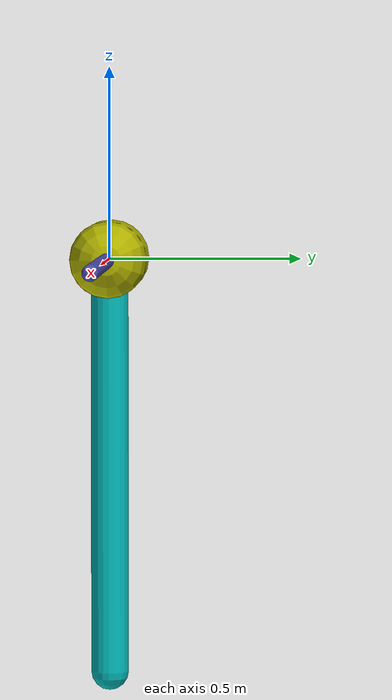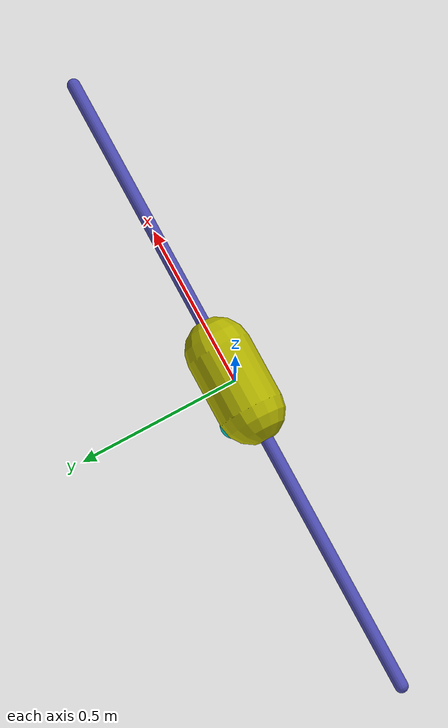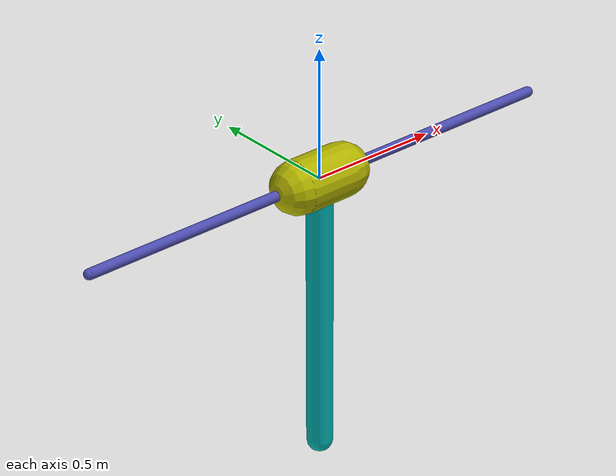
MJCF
<mujoco model="inverted pendulum">
        <compiler inertiafromgeom="true"/>
        <default>
            <joint armature="0" damping="0.5" limited="true"/>
            <geom contype="0" friction="1 0.1 0.1" rgba="0.7 0.7 0 1"/>
            <tendon/>
            <motor ctrlrange="-1 1"/>
        </default>
        <option gravity="0 0 -9.81" integrator="RK4" timestep="0.02"/>
        <size nstack="3000"/>
        <worldbody>
            <!--geom name="ground" type="plane" pos="0 0 0" /-->
            <geom name="rail" pos="0 0 0" quat="0.707 0 0.707 0" rgba="0.3 0.3 0.7 1" size="0.02 1" type="capsule"/>
            <body name="cart" pos="0 0 0">
                <joint axis="1 0 0" limited="true" name="slider" pos="0 0 0" range="-1 1" type="slide"/>
                <geom name="cart" pos="0 0 0" quat="0.707 0 0.707 0" size="0.1 0.1" type="capsule"/>
                <body name="pole" pos="0 0 0">
                    <joint axis="0 1 0" name="hinge" pos="0 0 0" range="-1000 1000" type="hinge"/>
                    <geom fromto="0 0 0 0.001 0 -1.0844876200919753" name="cpole" rgba="0 0.7 0.7 1" size="0.049 0.3" type="capsule"/>
                </body>
            </body>
        </worldbody>
        <actuator>
            <motor gear="300" joint="slider" name="slide"/>
        </actuator>
    </mujoco>
